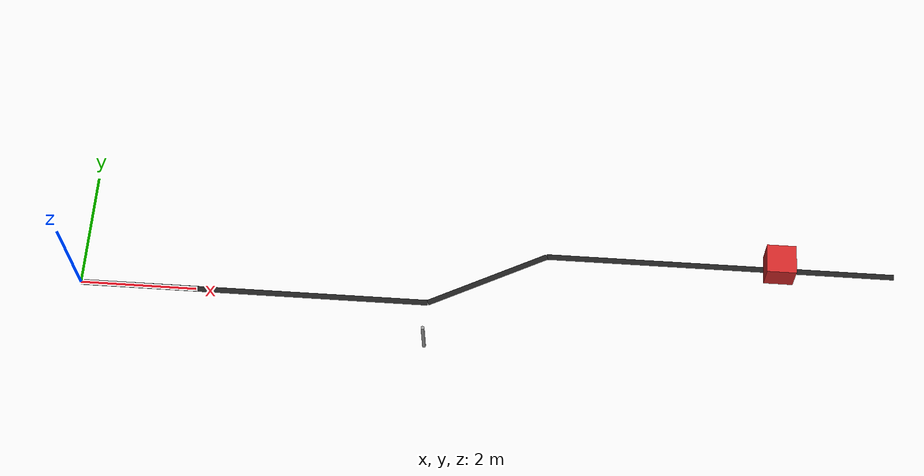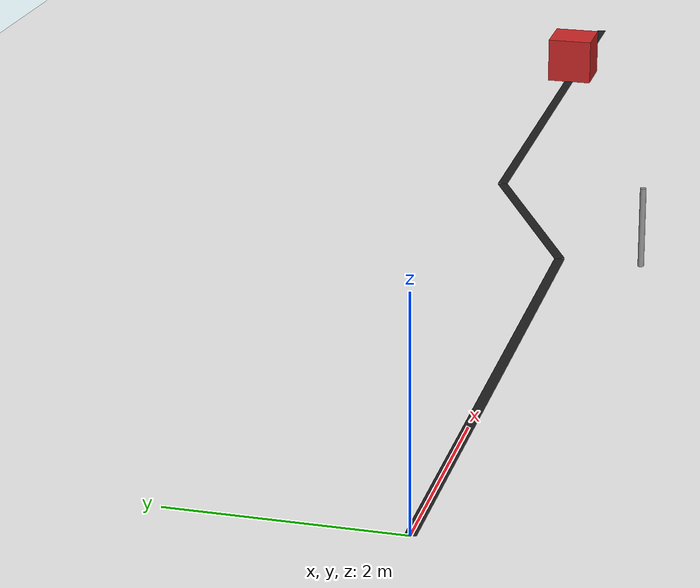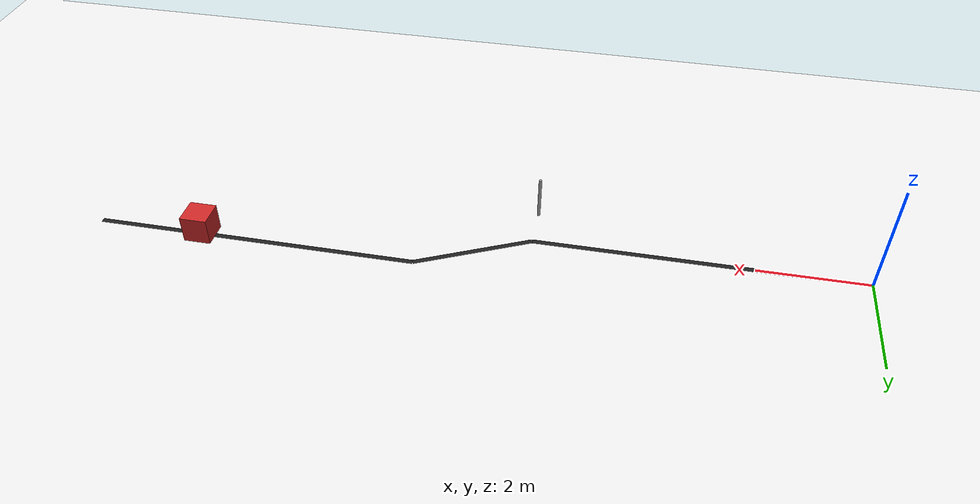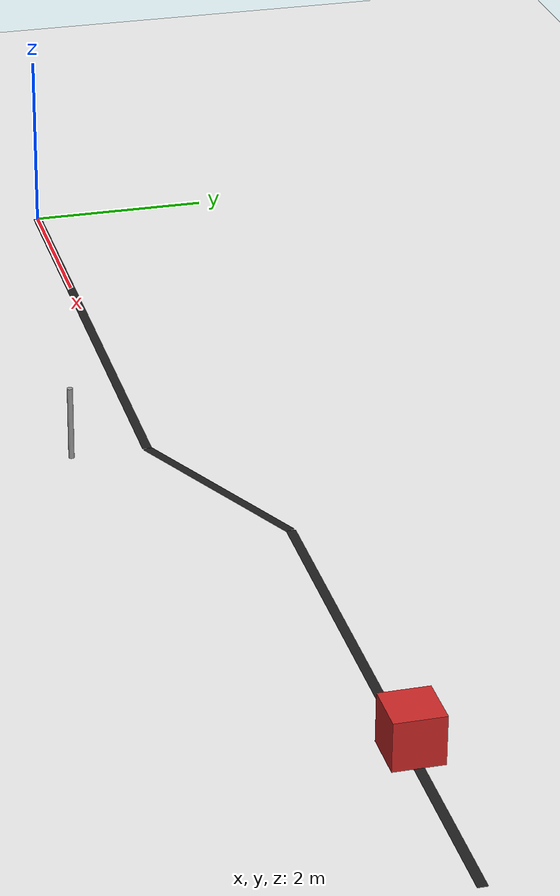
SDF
<sdf version="1.6">
 <world name="perception_world">
  <plugin name="gazebo_ros_state" filename="libgazebo_ros_state.so"/>
  <light type="directional" name="sun">
   <pose>0 0 10 0 0 0</pose>
   <diffuse>0.8 0.8 0.8 1</diffuse>
   <specular>0.2 0.2 0.2 1</specular>
   <attenuation>
    <range>1000</range>
    <constant>0.9</constant>
    <linear>0.01</linear>
    <quadratic>0.001</quadratic>
   </attenuation>
   <direction>-0.5 0.1 -0.9</direction>
  </light>
  <model name="ground_plane">
   <static>true</static>
   <link name="link">
    <collision name="collision">
     <geometry><plane><normal>0 0 1</normal><size>100 100</size></plane></geometry>
     <surface><friction><ode><mu>100</mu><mu2>50</mu2></ode></friction></surface>
    </collision>
    <visual name="visual">
     <cast_shadows>false</cast_shadows>
     <geometry><plane><normal>0 0 1</normal><size>100 100</size></plane></geometry>
     <material>
      <script><uri>file://media/materials/scripts/gazebo.material</uri><name>Gazebo/White</name></script>
     </material>
    </visual>
   </link>
  </model>
  <model name="lane_segment_1">
   <static>true</static>
   <link name="link">
    <visual name="visual">
     <geometry><box><size>6.0 0.1 0.001</size></box></geometry>
     <material>
      <script><uri>file://media/materials/scripts/gazebo.material</uri><name>Gazebo/Black</name></script>
     </material>
    </visual>
   </link>
   <pose>3.0 0.0 0.0005 0 0 0</pose>
  </model>
  <model name="lane_segment_2">
   <static>true</static>
   <link name="link">
    <visual name="visual">
     <geometry><box><size>2.236 0.1 0.001</size></box></geometry>
     <material>
      <script><uri>file://media/materials/scripts/gazebo.material</uri><name>Gazebo/Black</name></script>
     </material>
    </visual>
   </link>
   <pose>7.0 0.5 0.0005 0 0 0.4636</pose>
  </model>
  <model name="lane_segment_3">
   <static>true</static>
   <link name="link">
    <visual name="visual">
     <geometry><box><size>6.0 0.1 0.001</size></box></geometry>
     <material>
      <script><uri>file://media/materials/scripts/gazebo.material</uri><name>Gazebo/Black</name></script>
     </material>
    </visual>
   </link>
   <pose>11.0 1.0 0.0005 0 0 0</pose>
  </model>
  <model name="traffic_light_pole">
   <static>true</static>
   <link name="link">
    <collision name="collision">
     <geometry><cylinder><radius>0.03</radius><length>0.8</length></cylinder></geometry>
    </collision>
    <visual name="visual">
     <geometry><cylinder><radius>0.03</radius><length>0.8</length></cylinder></geometry>
     <material>
      <script><uri>file://media/materials/scripts/gazebo.material</uri><name>Gazebo/Grey</name></script>
     </material>
    </visual>
    <pose>6.0 -0.8 0.4 0 0 0</pose>
   </link>
  </model>
  <model name="obstacle_box">
   <static>true</static>
   <link name="link">
    <collision name="collision"><geometry><box><size>0.5 0.5 0.5</size></box></geometry></collision>
    <visual name="visual">
     <geometry><box><size>0.5 0.5 0.5</size></box></geometry>
     <material>
      <script><uri>file://media/materials/scripts/gazebo.material</uri><name>Gazebo/Red</name></script>
     </material>
    </visual>
   </link>
   <pose>12.0 1.0 0.25 0 0 0</pose>
  </model>
 </world>
</sdf>
